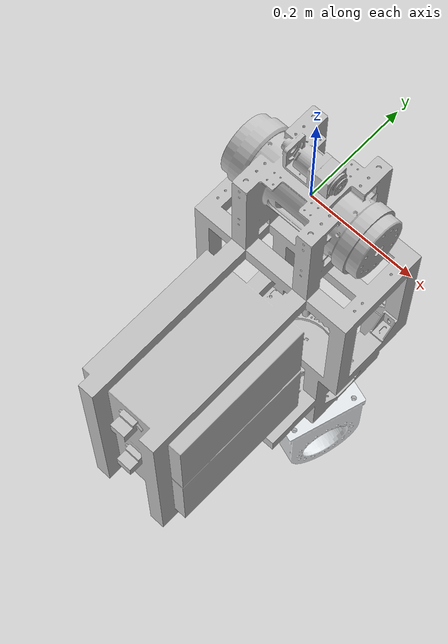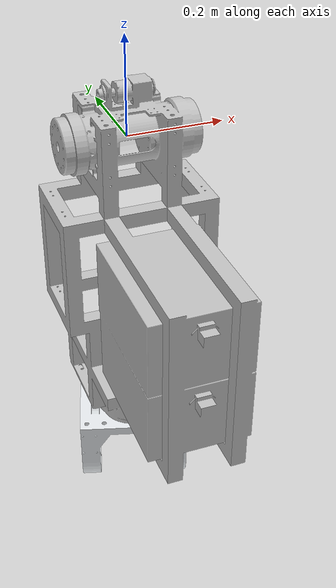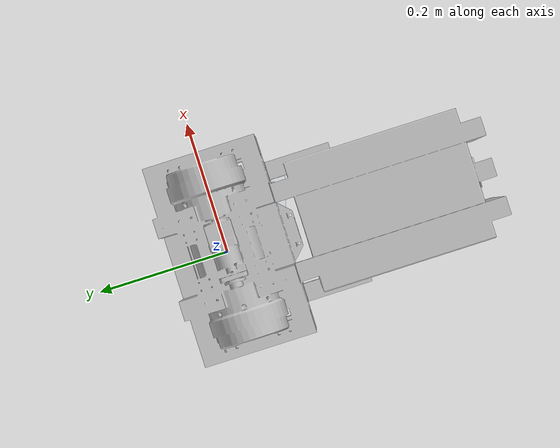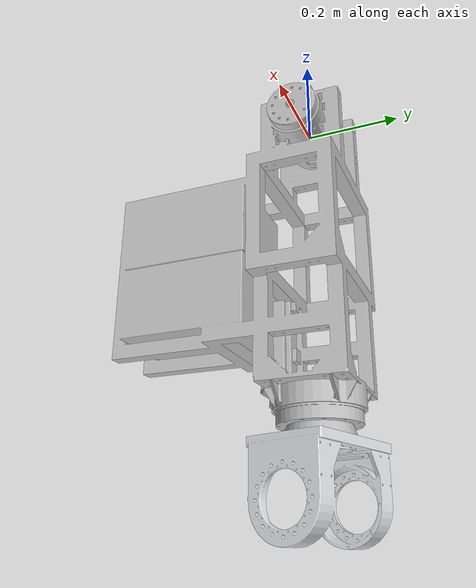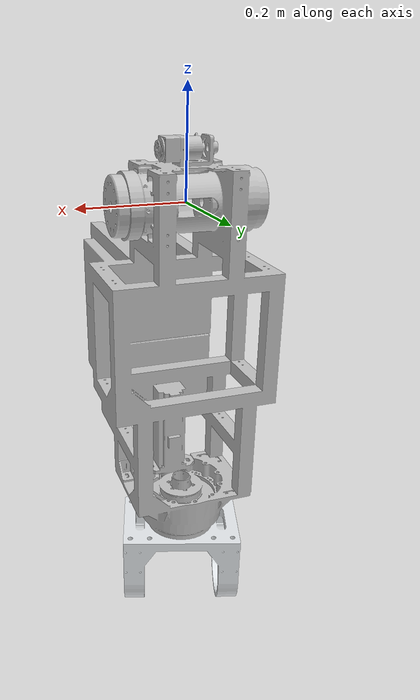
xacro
<?xml version="1.0" encoding="utf-8"?>
<robot name="mobile_dual_arm_robot" xmlns:xacro='rosxacro'>
  <link
    name="base_link">
    <inertial>
      <origin
        xyz="-0.000245947869981271 -0.186110769844011 -0.300559114524674"
        rpy="0 0 0" />
      <mass
        value="29.230369056693" />
      <inertia
        ixx="1.34716988578229"
        ixy="-0.00265368667451038"
        ixz="0.00127378826841601"
        iyy="0.909006705992246"
        iyz="-0.0548690070502819"
        izz="0.731431800891708" />
    </inertial>
    <visual>
      <origin
        xyz="0 0 0"
        rpy="0 0 0" />
      <geometry>
        <mesh
          filename="package://mobile_dual_arm_robot/meshes/base_link.STL" />
      </geometry>
      <material
        name="">
        <color
          rgba="0.752941176470588 0.752941176470588 0.752941176470588 1" />
      </material>
    </visual>
  </link>
  <link
    name="yao_link">
    <inertial>
      <origin
        xyz="-4.70664810752609E-17 1.00157612079759E-16 0.0619650186541176"
        rpy="0 0 -1.5708" />
      <mass
        value="1.2829439668615" />
      <inertia
        ixx="0.00751845949038677"
        ixy="-3.16997985837294E-09"
        ixz="-4.63089857794973E-18"
        iyy="0.0145758761435926"
        iyz="-5.84911832562006E-19"
        izz="0.0143225671493637" />
    </inertial>
    <visual>
      <origin
        xyz="0 0 0"
        rpy="0 0 -1.8708" />
      <geometry>
        <mesh
          filename="package://mobile_dual_arm_robot/meshes/yao_link.STL" />
      </geometry>
      <material
        name="">
        <color
          rgba="0.898039215686275 0.913725490196078 0.925490196078431 1" />
      </material>
    </visual>
  </link>
  <joint
    name="yao_joint"
    type="revolute">
    <origin
      xyz="0 0 -0.796"
      rpy="0 0 1.5708" />
    <parent
      link="base_link" />
    <child
      link="yao_link" />
    <axis
      xyz="0 0 -1" />
    <limit
      lower="-1.57"
      upper="1.57"
      effort="100"
      velocity="5" />
  </joint>

  <transmission name="yao_joint_transmission">
      <type>transmission_interface/SimpleTransmission</type>
      <joint name="yao_joint">
          <hardwareInterface>hardware_interface/EffortJointInterface</hardwareInterface>
      </joint>
      <actuator name="yao_joint_actuator">
          <hardwareInterface>hardware_interface/EffortJointInterface</hardwareInterface>
          <mechanicalReduction>1</mechanicalReduction>
          <motorTorqueConstant>1</motorTorqueConstant>
      </actuator>
  </transmission>

</robot>
